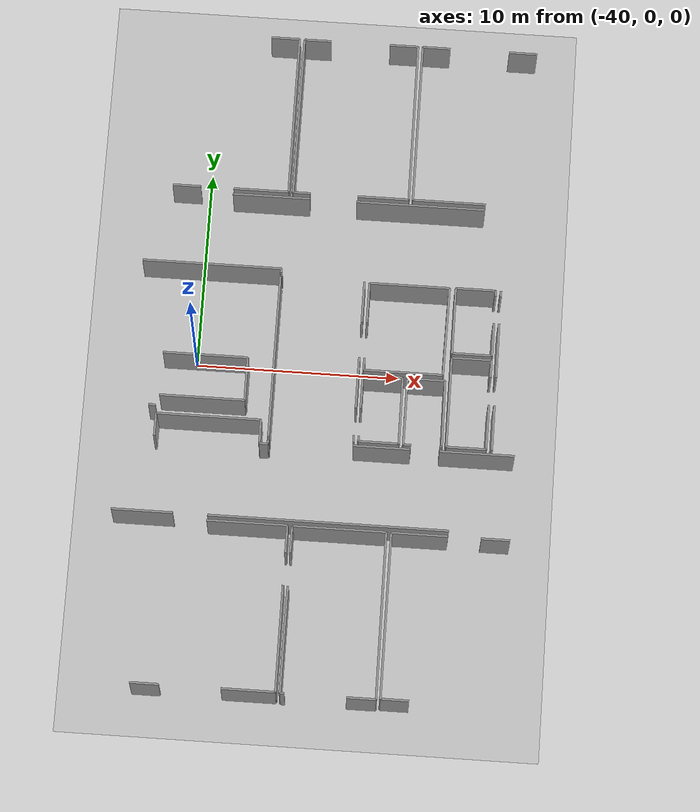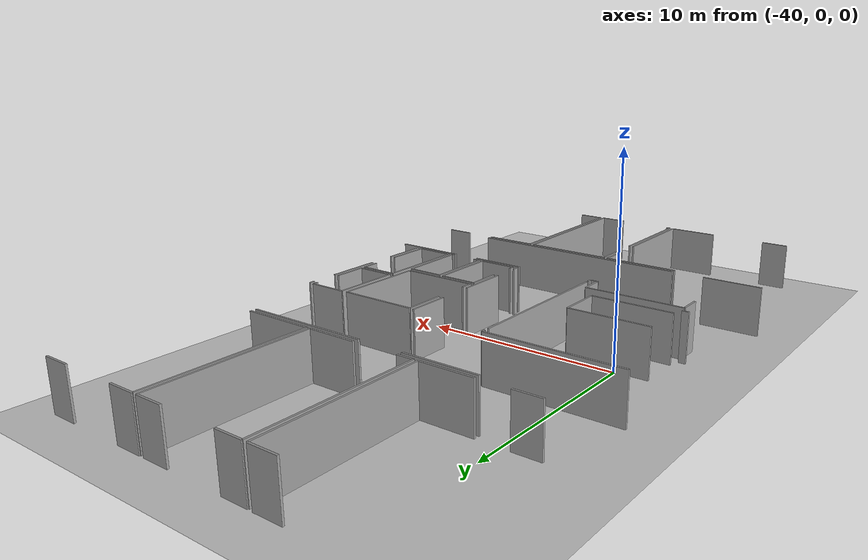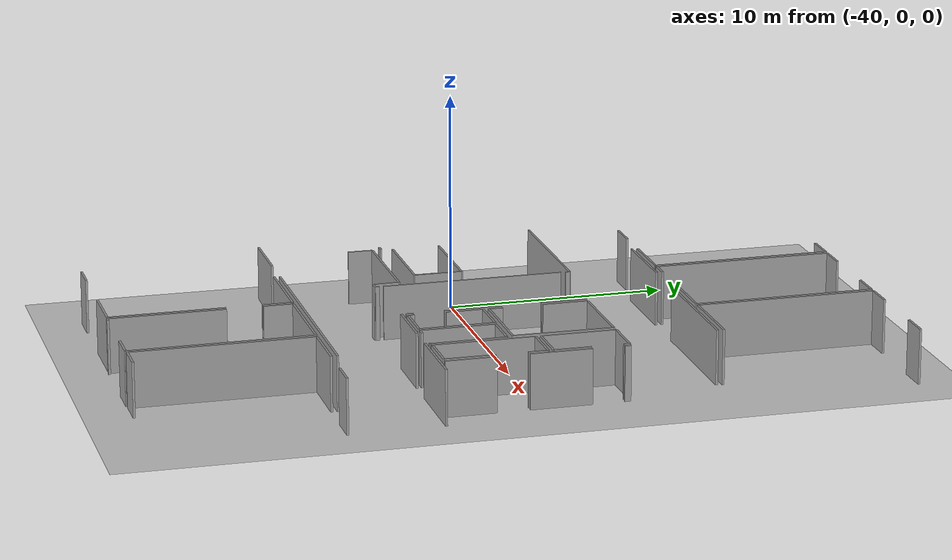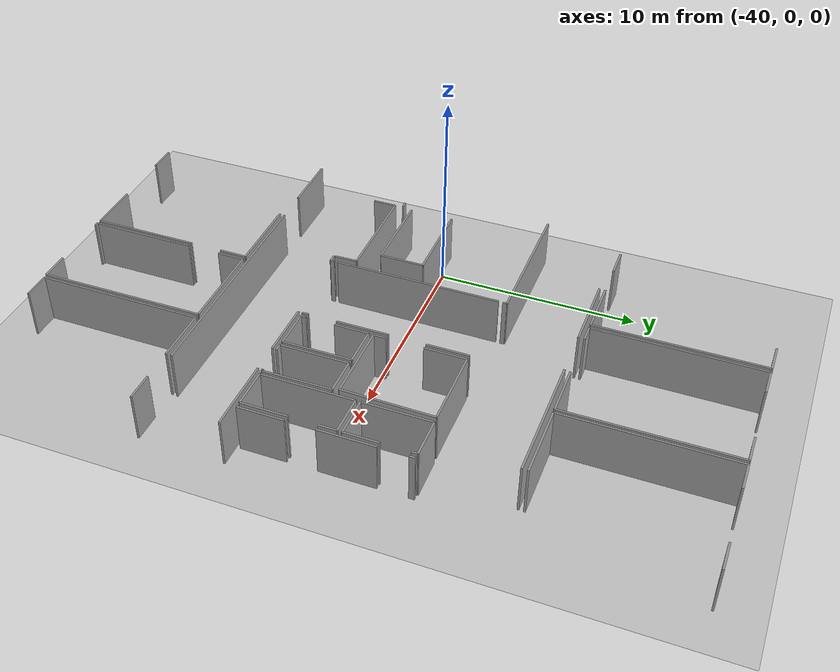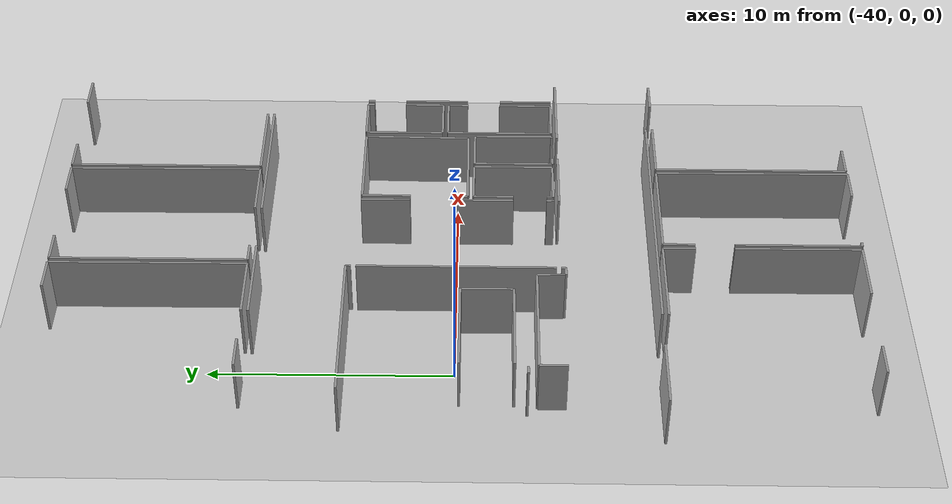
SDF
<sdf version="1.6">
 <world name="default">
  <model name="ground_plane">
   <static>1</static>
   <link name="link">
    <collision name="collision">
     <geometry><plane><normal>0 0 1</normal><size>100 100</size></plane></geometry>
     <surface><friction><ode><mu>100</mu><mu2>50</mu2></ode></friction></surface>
    </collision>
    <visual name="visual">
     <cast_shadows>0</cast_shadows>
     <geometry><plane><normal>0 0 1</normal><size>100 100</size></plane></geometry>
     <material>
      <script><uri>file://media/materials/scripts/gazebo.material</uri><name>Gazebo/Grey</name></script>
     </material>
    </visual>
   </link>
  </model>
  <model name="50041184">
   <static>1</static>
   <link name="Wall_3">
    <collision name="Wall_3_Collision">
     <geometry><box><size>0.209850134251 0.1 2.5</size></box></geometry>
     <pose>0.104925067125 0 1.25 0 0 0</pose>
    </collision>
    <visual name="Wall_3_Visual">
     <pose>0.104925067125 0 1.25 0 0 0</pose>
     <geometry><box><size>0.209850134251 0.1 2.5</size></box></geometry>
     <material>
      <script><uri>file://media/materials/scripts/gazebo.material</uri><name>Gazebo/Grey</name></script>
      <ambient>1 1 1 1</ambient>
     </material>
    </visual>
    <pose>35.4769996382 -12.4745939152 0 0 0 1.57079632679</pose>
   </link>
   <link name="Wall_4">
    <collision name="Wall_4_Collision">
     <geometry><box><size>6.88773081293 0.1 2.5</size></box></geometry>
     <pose>3.44386540647 0 1.25 0 0 0</pose>
    </collision>
    <visual name="Wall_4_Visual">
     <pose>3.44386540647 0 1.25 0 0 0</pose>
     <geometry><box><size>6.88773081293 0.1 2.5</size></box></geometry>
     <material>
      <script><uri>file://media/materials/scripts/gazebo.material</uri><name>Gazebo/Grey</name></script>
      <ambient>1 1 1 1</ambient>
     </material>
    </visual>
    <pose>35.4769996382 -12.264743781 0 0 0 3.14159265359</pose>
   </link>
   <link name="Wall_12">
    <collision name="Wall_12_Collision">
     <geometry><box><size>3.83062186986 0.1 2.5</size></box></geometry>
     <pose>1.91531093493 0 1.25 0 0 0</pose>
    </collision>
    <visual name="Wall_12_Visual">
     <pose>1.91531093493 0 1.25 0 0 0</pose>
     <geometry><box><size>3.83062186986 0.1 2.5</size></box></geometry>
     <material>
      <script><uri>file://media/materials/scripts/gazebo.material</uri><name>Gazebo/Grey</name></script>
      <ambient>1 1 1 1</ambient>
     </material>
    </visual>
    <pose>32.7894452873 -8.50813439041 0 0 0 0.0</pose>
   </link>
   <link name="Wall_13">
    <collision name="Wall_13_Collision">
     <geometry><box><size>6.39401806514 0.1 2.5</size></box></geometry>
     <pose>3.19700903257 0 1.25 0 0 0</pose>
    </collision>
    <visual name="Wall_13_Visual">
     <pose>3.19700903257 0 1.25 0 0 0</pose>
     <geometry><box><size>6.39401806514 0.1 2.5</size></box></geometry>
     <material>
      <script><uri>file://media/materials/scripts/gazebo.material</uri><name>Gazebo/Grey</name></script>
      <ambient>1 1 1 1</ambient>
     </material>
    </visual>
    <pose>38.9601564037 -8.50813439041 0 0 0 0.0</pose>
   </link>
   <link name="Wall_27">
    <collision name="Wall_27_Collision">
     <geometry><box><size>2.73896953809 0.1 2.5</size></box></geometry>
     <pose>1.36948476904 0 1.25 0 0 0</pose>
    </collision>
    <visual name="Wall_27_Visual">
     <pose>1.36948476904 0 1.25 0 0 0</pose>
     <geometry><box><size>2.73896953809 0.1 2.5</size></box></geometry>
     <material>
      <script><uri>file://media/materials/scripts/gazebo.material</uri><name>Gazebo/Grey</name></script>
      <ambient>1 1 1 1</ambient>
     </material>
    </visual>
    <pose>35.540602129 -8.22414482579 0 0 0 3.14159265359</pose>
   </link>
   <link name="Wall_28">
    <collision name="Wall_28_Collision">
     <geometry><box><size>1.40814137272 0.1 2.5</size></box></geometry>
     <pose>0.704070686361 0 1.25 0 0 0</pose>
    </collision>
    <visual name="Wall_28_Visual">
     <pose>0.704070686361 0 1.25 0 0 0</pose>
     <geometry><box><size>1.40814137272 0.1 2.5</size></box></geometry>
     <material>
      <script><uri>file://media/materials/scripts/gazebo.material</uri><name>Gazebo/Grey</name></script>
      <ambient>1 1 1 1</ambient>
     </material>
    </visual>
    <pose>31.1672643947 -8.22414482579 0 0 0 3.14159265359</pose>
   </link>
   <link name="Wall_31">
    <collision name="Wall_31_Collision">
     <geometry><box><size>1.43264293105 0.1 2.5</size></box></geometry>
     <pose>0.716321465523 0 1.25 0 0 0</pose>
    </collision>
    <visual name="Wall_31_Visual">
     <pose>0.716321465523 0 1.25 0 0 0</pose>
     <geometry><box><size>1.43264293105 0.1 2.5</size></box></geometry>
     <material>
      <script><uri>file://media/materials/scripts/gazebo.material</uri><name>Gazebo/Grey</name></script>
      <ambient>1 1 1 1</ambient>
     </material>
    </visual>
    <pose>34.0843462972 -0.016757542481 0 0 0 0.0</pose>
   </link>
   <link name="Wall_32">
    <collision name="Wall_32_Collision">
     <geometry><box><size>8.20742125075 0.1 2.5</size></box></geometry>
     <pose>4.10371062538 0 1.25 0 0 0</pose>
    </collision>
    <visual name="Wall_32_Visual">
     <pose>4.10371062538 0 1.25 0 0 0</pose>
     <geometry><box><size>8.20742125075 0.1 2.5</size></box></geometry>
     <material>
      <script><uri>file://media/materials/scripts/gazebo.material</uri><name>Gazebo/Grey</name></script>
      <ambient>1 1 1 1</ambient>
     </material>
    </visual>
    <pose>35.5169892282 -0.016757542481 0 0 0 -1.56791930457</pose>
   </link>
   <link name="Wall_33">
    <collision name="Wall_33_Collision">
     <geometry><box><size>2.53572085997 0.1 2.5</size></box></geometry>
     <pose>1.26786042998 0 1.25 0 0 0</pose>
    </collision>
    <visual name="Wall_33_Visual">
     <pose>1.26786042998 0 1.25 0 0 0</pose>
     <geometry><box><size>2.53572085997 0.1 2.5</size></box></geometry>
     <material>
      <script><uri>file://media/materials/scripts/gazebo.material</uri><name>Gazebo/Grey</name></script>
      <ambient>1 1 1 1</ambient>
     </material>
    </visual>
    <pose>41.5365016091 -8.22389092363 0 0 0 3.14159265359</pose>
   </link>
   <link name="Wall_34">
    <collision name="Wall_34_Collision">
     <geometry><box><size>0.863902095328 0.1 2.5</size></box></geometry>
     <pose>0.431951047664 0 1.25 0 0 0</pose>
    </collision>
    <visual name="Wall_34_Visual">
     <pose>0.431951047664 0 1.25 0 0 0</pose>
     <geometry><box><size>0.863902095328 0.1 2.5</size></box></geometry>
     <material>
      <script><uri>file://media/materials/scripts/gazebo.material</uri><name>Gazebo/Grey</name></script>
      <ambient>1 1 1 1</ambient>
     </material>
    </visual>
    <pose>36.6292076348 -8.22389092363 0 0 0 3.14159265359</pose>
   </link>
   <link name="Wall_35">
    <collision name="Wall_35_Collision">
     <geometry><box><size>8.19964326747 0.1 2.5</size></box></geometry>
     <pose>4.09982163373 0 1.25 0 0 0</pose>
    </collision>
    <visual name="Wall_35_Visual">
     <pose>4.09982163373 0 1.25 0 0 0</pose>
     <geometry><box><size>8.19964326747 0.1 2.5</size></box></geometry>
     <material>
      <script><uri>file://media/materials/scripts/gazebo.material</uri><name>Gazebo/Grey</name></script>
      <ambient>1 1 1 1</ambient>
     </material>
    </visual>
    <pose>35.7653055395 -8.22389092363 0 0 0 1.57079632679</pose>
   </link>
   <link name="Wall_36">
    <collision name="Wall_36_Collision">
     <geometry><box><size>1.35951910931 0.1 2.5</size></box></geometry>
     <pose>0.679759554656 0 1.25 0 0 0</pose>
    </collision>
    <visual name="Wall_36_Visual">
     <pose>0.679759554656 0 1.25 0 0 0</pose>
     <geometry><box><size>1.35951910931 0.1 2.5</size></box></geometry>
     <material>
      <script><uri>file://media/materials/scripts/gazebo.material</uri><name>Gazebo/Grey</name></script>
      <ambient>1 1 1 1</ambient>
     </material>
    </visual>
    <pose>35.7653055395 -0.0242476561657 0 0 0 0.0</pose>
   </link>
   <link name="Wall_37">
    <collision name="Wall_37_Collision">
     <geometry><box><size>1.42007477419 0.1 2.5</size></box></geometry>
     <pose>0.710037387093 0 1.25 0 0 0</pose>
    </collision>
    <visual name="Wall_37_Visual">
     <pose>0.710037387093 0 1.25 0 0 0</pose>
     <geometry><box><size>1.42007477419 0.1 2.5</size></box></geometry>
     <material>
      <script><uri>file://media/materials/scripts/gazebo.material</uri><name>Gazebo/Grey</name></script>
      <ambient>1 1 1 1</ambient>
     </material>
    </visual>
    <pose>40.0850699183 -0.0242476561657 0 0 0 0.0</pose>
   </link>
   <link name="Wall_38">
    <collision name="Wall_38_Collision">
     <geometry><box><size>8.1997032245 0.1 2.5</size></box></geometry>
     <pose>4.09985161225 0 1.25 0 0 0</pose>
    </collision>
    <visual name="Wall_38_Visual">
     <pose>4.09985161225 0 1.25 0 0 0</pose>
     <geometry><box><size>8.1997032245 0.1 2.5</size></box></geometry>
     <material>
      <script><uri>file://media/materials/scripts/gazebo.material</uri><name>Gazebo/Grey</name></script>
      <ambient>1 1 1 1</ambient>
     </material>
    </visual>
    <pose>41.5051446925 -0.0242476561657 0 0 0 -1.56697216485</pose>
   </link>
   <link name="Wall_40">
    <collision name="Wall_40_Collision">
     <geometry><box><size>3.63333989247 0.1 2.5</size></box></geometry>
     <pose>1.81666994624 0 1.25 0 0 0</pose>
    </collision>
    <visual name="Wall_40_Visual">
     <pose>1.81666994624 0 1.25 0 0 0</pose>
     <geometry><box><size>3.63333989247 0.1 2.5</size></box></geometry>
     <material>
      <script><uri>file://media/materials/scripts/gazebo.material</uri><name>Gazebo/Grey</name></script>
      <ambient>1 1 1 1</ambient>
     </material>
    </visual>
    <pose>45.3728362775 -8.2216058042 0 0 0 3.14159265359</pose>
   </link>
   <link name="Wall_41">
    <collision name="Wall_41_Collision">
     <geometry><box><size>8.20294399553 0.1 2.5</size></box></geometry>
     <pose>4.10147199777 0 1.25 0 0 0</pose>
    </collision>
    <visual name="Wall_41_Visual">
     <pose>4.10147199777 0 1.25 0 0 0</pose>
     <geometry><box><size>8.20294399553 0.1 2.5</size></box></geometry>
     <material>
      <script><uri>file://media/materials/scripts/gazebo.material</uri><name>Gazebo/Grey</name></script>
      <ambient>1 1 1 1</ambient>
     </material>
    </visual>
    <pose>41.7394963851 -8.2216058042 0 0 0 1.57079632679</pose>
   </link>
   <link name="Wall_42">
    <collision name="Wall_42_Collision">
     <geometry><box><size>1.39417675399 0.1 2.5</size></box></geometry>
     <pose>0.697088376994 0 1.25 0 0 0</pose>
    </collision>
    <visual name="Wall_42_Visual">
     <pose>0.697088376994 0 1.25 0 0 0</pose>
     <geometry><box><size>1.39417675399 0.1 2.5</size></box></geometry>
     <material>
      <script><uri>file://media/materials/scripts/gazebo.material</uri><name>Gazebo/Grey</name></script>
      <ambient>1 1 1 1</ambient>
     </material>
    </visual>
    <pose>41.7394963851 -0.018661808672 0 0 0 0.0</pose>
   </link>
   <link name="Wall_43">
    <collision name="Wall_43_Collision">
     <geometry><box><size>1.41055344323 0.1 2.5</size></box></geometry>
     <pose>0.705276721615 0 1.25 0 0 0</pose>
    </collision>
    <visual name="Wall_43_Visual">
     <pose>0.705276721615 0 1.25 0 0 0</pose>
     <geometry><box><size>1.41055344323 0.1 2.5</size></box></geometry>
     <material>
      <script><uri>file://media/materials/scripts/gazebo.material</uri><name>Gazebo/Grey</name></script>
      <ambient>1 1 1 1</ambient>
     </material>
    </visual>
    <pose>46.1028049841 -0.018661808672 0 0 0 0.0</pose>
   </link>
   <link name="Wall_241">
    <collision name="Wall_241_Collision">
     <geometry><box><size>2.27039310402 0.1 2.5</size></box></geometry>
     <pose>1.13519655201 0 1.25 0 0 0</pose>
    </collision>
    <visual name="Wall_241_Visual">
     <pose>1.13519655201 0 1.25 0 0 0</pose>
     <geometry><box><size>2.27039310402 0.1 2.5</size></box></geometry>
     <material>
      <script><uri>file://media/materials/scripts/gazebo.material</uri><name>Gazebo/Grey</name></script>
      <ambient>1 1 1 1</ambient>
     </material>
    </visual>
    <pose>46.3809547991 -20.8843412191 0 0 0 1.57079632679</pose>
   </link>
   <link name="Wall_242">
    <collision name="Wall_242_Collision">
     <geometry><box><size>2.75991646619 0.1 2.5</size></box></geometry>
     <pose>1.37995823309 0 1.25 0 0 0</pose>
    </collision>
    <visual name="Wall_242_Visual">
     <pose>1.37995823309 0 1.25 0 0 0</pose>
     <geometry><box><size>2.75991646619 0.1 2.5</size></box></geometry>
     <material>
      <script><uri>file://media/materials/scripts/gazebo.material</uri><name>Gazebo/Grey</name></script>
      <ambient>1 1 1 1</ambient>
     </material>
    </visual>
    <pose>46.3809547991 -17.1628972775 0 0 0 1.57079632679</pose>
   </link>
   <link name="Wall_243">
    <collision name="Wall_243_Collision">
     <geometry><box><size>0.277768961731 0.1 2.5</size></box></geometry>
     <pose>0.138884480865 0 1.25 0 0 0</pose>
    </collision>
    <visual name="Wall_243_Visual">
     <pose>0.138884480865 0 1.25 0 0 0</pose>
     <geometry><box><size>0.277768961731 0.1 2.5</size></box></geometry>
     <material>
      <script><uri>file://media/materials/scripts/gazebo.material</uri><name>Gazebo/Grey</name></script>
      <ambient>1 1 1 1</ambient>
     </material>
    </visual>
    <pose>46.3809547991 -12.9831599393 0 0 0 1.57079632679</pose>
   </link>
   <link name="Wall_247">
    <collision name="Wall_247_Collision">
     <geometry><box><size>1.96989989907 0.1 2.5</size></box></geometry>
     <pose>0.984949949537 0 1.25 0 0 0</pose>
    </collision>
    <visual name="Wall_247_Visual">
     <pose>0.984949949537 0 1.25 0 0 0</pose>
     <geometry><box><size>1.96989989907 0.1 2.5</size></box></geometry>
     <material>
      <script><uri>file://media/materials/scripts/gazebo.material</uri><name>Gazebo/Grey</name></script>
      <ambient>1 1 1 1</ambient>
     </material>
    </visual>
    <pose>46.1221015482 -16.0680711688 0 0 0 3.14159265359</pose>
   </link>
   <link name="Wall_248">
    <collision name="Wall_248_Collision">
     <geometry><box><size>3.37232847322 0.1 2.5</size></box></geometry>
     <pose>1.68616423661 0 1.25 0 0 0</pose>
    </collision>
    <visual name="Wall_248_Visual">
     <pose>1.68616423661 0 1.25 0 0 0</pose>
     <geometry><box><size>3.37232847322 0.1 2.5</size></box></geometry>
     <material>
      <script><uri>file://media/materials/scripts/gazebo.material</uri><name>Gazebo/Grey</name></script>
      <ambient>1 1 1 1</ambient>
     </material>
    </visual>
    <pose>44.1522016491 -16.0680711688 0 0 0 1.57079632679</pose>
   </link>
   <link name="Wall_249">
    <collision name="Wall_249_Collision">
     <geometry><box><size>1.96989989907 0.1 2.5</size></box></geometry>
     <pose>0.984949949537 0 1.25 0 0 0</pose>
    </collision>
    <visual name="Wall_249_Visual">
     <pose>0.984949949537 0 1.25 0 0 0</pose>
     <geometry><box><size>1.96989989907 0.1 2.5</size></box></geometry>
     <material>
      <script><uri>file://media/materials/scripts/gazebo.material</uri><name>Gazebo/Grey</name></script>
      <ambient>1 1 1 1</ambient>
     </material>
    </visual>
    <pose>44.1522016491 -12.6957426956 0 0 0 0.0</pose>
   </link>
   <link name="Wall_250">
    <collision name="Wall_250_Collision">
     <geometry><box><size>0.275483842301 0.1 2.5</size></box></geometry>
     <pose>0.137741921151 0 1.25 0 0 0</pose>
    </collision>
    <visual name="Wall_250_Visual">
     <pose>0.137741921151 0 1.25 0 0 0</pose>
     <geometry><box><size>0.275483842301 0.1 2.5</size></box></geometry>
     <material>
      <script><uri>file://media/materials/scripts/gazebo.material</uri><name>Gazebo/Grey</name></script>
      <ambient>1 1 1 1</ambient>
     </material>
    </visual>
    <pose>46.1221015482 -12.6957426956 0 0 0 -1.57079632679</pose>
   </link>
   <link name="Wall_251">
    <collision name="Wall_251_Collision">
     <geometry><box><size>1.68705289417 0.1 2.5</size></box></geometry>
     <pose>0.843526447084 0 1.25 0 0 0</pose>
    </collision>
    <visual name="Wall_251_Visual">
     <pose>0.843526447084 0 1.25 0 0 0</pose>
     <geometry><box><size>1.68705289417 0.1 2.5</size></box></geometry>
     <material>
      <script><uri>file://media/materials/scripts/gazebo.material</uri><name>Gazebo/Grey</name></script>
      <ambient>1 1 1 1</ambient>
     </material>
    </visual>
    <pose>46.1221015482 -14.3810182746 0 0 0 -1.57079632679</pose>
   </link>
   <link name="Wall_252">
    <collision name="Wall_252_Collision">
     <geometry><box><size>1.94285931916 0.1 2.5</size></box></geometry>
     <pose>0.971429659581 0 1.25 0 0 0</pose>
    </collision>
    <visual name="Wall_252_Visual">
     <pose>0.971429659581 0 1.25 0 0 0</pose>
     <geometry><box><size>1.94285931916 0.1 2.5</size></box></geometry>
     <material>
      <script><uri>file://media/materials/scripts/gazebo.material</uri><name>Gazebo/Grey</name></script>
      <ambient>1 1 1 1</ambient>
     </material>
    </visual>
    <pose>46.0973460877 -20.8637751442 0 0 0 3.14159265359</pose>
   </link>
   <link name="Wall_253">
    <collision name="Wall_253_Collision">
     <geometry><box><size>4.56274874477 0.1 2.5</size></box></geometry>
     <pose>2.28137437239 0 1.25 0 0 0</pose>
    </collision>
    <visual name="Wall_253_Visual">
     <pose>2.28137437239 0 1.25 0 0 0</pose>
     <geometry><box><size>4.56274874477 0.1 2.5</size></box></geometry>
     <material>
      <script><uri>file://media/materials/scripts/gazebo.material</uri><name>Gazebo/Grey</name></script>
      <ambient>1 1 1 1</ambient>
     </material>
    </visual>
    <pose>44.1544867685 -20.8637751442 0 0 0 1.57079632679</pose>
   </link>
   <link name="Wall_254">
    <collision name="Wall_254_Collision">
     <geometry><box><size>1.95631613358 0.1 2.5</size></box></geometry>
     <pose>0.978158066789 0 1.25 0 0 0</pose>
    </collision>
    <visual name="Wall_254_Visual">
     <pose>0.978158066789 0 1.25 0 0 0</pose>
     <geometry><box><size>1.95631613358 0.1 2.5</size></box></geometry>
     <material>
      <script><uri>file://media/materials/scripts/gazebo.material</uri><name>Gazebo/Grey</name></script>
      <ambient>1 1 1 1</ambient>
     </material>
    </visual>
    <pose>44.1544867685 -16.3010263995 0 0 0 0.0</pose>
   </link>
   <link name="Wall_255">
    <collision name="Wall_255_Collision">
     <geometry><box><size>0.875708545712 0.1 2.5</size></box></geometry>
     <pose>0.437854272856 0 1.25 0 0 0</pose>
    </collision>
    <visual name="Wall_255_Visual">
     <pose>0.437854272856 0 1.25 0 0 0</pose>
     <geometry><box><size>0.875708545712 0.1 2.5</size></box></geometry>
     <material>
      <script><uri>file://media/materials/scripts/gazebo.material</uri><name>Gazebo/Grey</name></script>
      <ambient>1 1 1 1</ambient>
     </material>
    </visual>
    <pose>46.1108029021 -16.3010263995 0 0 0 -1.57079632679</pose>
   </link>
   <link name="Wall_256">
    <collision name="Wall_256_Collision">
     <geometry><box><size>2.28223922759 0.1 2.5</size></box></geometry>
     <pose>1.1411196138 0 1.25 0 0 0</pose>
    </collision>
    <visual name="Wall_256_Visual">
     <pose>1.1411196138 0 1.25 0 0 0</pose>
     <geometry><box><size>2.28223922759 0.1 2.5</size></box></geometry>
     <material>
      <script><uri>file://media/materials/scripts/gazebo.material</uri><name>Gazebo/Grey</name></script>
      <ambient>1 1 1 1</ambient>
     </material>
    </visual>
    <pose>46.1108029021 -18.5815755898 0 0 0 -1.57669268167</pose>
   </link>
   <link name="Wall_257">
    <collision name="Wall_257_Collision">
     <geometry><box><size>0.105623298062 0.1 2.5</size></box></geometry>
     <pose>0.052811649031 0 1.25 0 0 0</pose>
    </collision>
    <visual name="Wall_257_Visual">
     <pose>0.052811649031 0 1.25 0 0 0</pose>
     <geometry><box><size>0.105623298062 0.1 2.5</size></box></geometry>
     <material>
      <script><uri>file://media/materials/scripts/gazebo.material</uri><name>Gazebo/Grey</name></script>
      <ambient>1 1 1 1</ambient>
     </material>
    </visual>
    <pose>43.9343535968 -20.8835795126 0 0 0 3.14159265359</pose>
   </link>
   <link name="Wall_258">
    <collision name="Wall_258_Collision">
     <geometry><box><size>0.376917754743 0.1 2.5</size></box></geometry>
     <pose>0.188458877372 0 1.25 0 0 0</pose>
    </collision>
    <visual name="Wall_258_Visual">
     <pose>0.188458877372 0 1.25 0 0 0</pose>
     <geometry><box><size>0.376917754743 0.1 2.5</size></box></geometry>
     <material>
      <script><uri>file://media/materials/scripts/gazebo.material</uri><name>Gazebo/Grey</name></script>
      <ambient>1 1 1 1</ambient>
     </material>
    </visual>
    <pose>42.4339187894 -20.8835795126 0 0 0 3.14159265359</pose>
   </link>
   <link name="Wall_259">
    <collision name="Wall_259_Collision">
     <geometry><box><size>3.37562920129 0.1 2.5</size></box></geometry>
     <pose>1.68781460064 0 1.25 0 0 0</pose>
    </collision>
    <visual name="Wall_259_Visual">
     <pose>1.68781460064 0 1.25 0 0 0</pose>
     <geometry><box><size>3.37562920129 0.1 2.5</size></box></geometry>
     <material>
      <script><uri>file://media/materials/scripts/gazebo.material</uri><name>Gazebo/Grey</name></script>
      <ambient>1 1 1 1</ambient>
     </material>
    </visual>
    <pose>42.0570010347 -20.8835795126 0 0 0 1.57079632679</pose>
   </link>
   <link name="Wall_260">
    <collision name="Wall_260_Collision">
     <geometry><box><size>1.84332967291 0.1 2.5</size></box></geometry>
     <pose>0.921664836455 0 1.25 0 0 0</pose>
    </collision>
    <visual name="Wall_260_Visual">
     <pose>0.921664836455 0 1.25 0 0 0</pose>
     <geometry><box><size>1.84332967291 0.1 2.5</size></box></geometry>
     <material>
      <script><uri>file://media/materials/scripts/gazebo.material</uri><name>Gazebo/Grey</name></script>
      <ambient>1 1 1 1</ambient>
     </material>
    </visual>
    <pose>42.0570010347 -17.5079503113 0 0 0 0.0</pose>
   </link>
   <link name="Wall_261">
    <collision name="Wall_261_Collision">
     <geometry><box><size>3.37580065489 0.1 2.5</size></box></geometry>
     <pose>1.68790032745 0 1.25 0 0 0</pose>
    </collision>
    <visual name="Wall_261_Visual">
     <pose>1.68790032745 0 1.25 0 0 0</pose>
     <geometry><box><size>3.37580065489 0.1 2.5</size></box></geometry>
     <material>
      <script><uri>file://media/materials/scripts/gazebo.material</uri><name>Gazebo/Grey</name></script>
      <ambient>1 1 1 1</ambient>
     </material>
    </visual>
    <pose>43.9003307076 -17.5079503113 0 0 0 -1.56071769101</pose>
   </link>
   <link name="Wall_262">
    <collision name="Wall_262_Collision">
     <geometry><box><size>3.89777899087 0.1 2.5</size></box></geometry>
     <pose>1.94888949543 0 1.25 0 0 0</pose>
    </collision>
    <visual name="Wall_262_Visual">
     <pose>1.94888949543 0 1.25 0 0 0</pose>
     <geometry><box><size>3.89777899087 0.1 2.5</size></box></geometry>
     <material>
      <script><uri>file://media/materials/scripts/gazebo.material</uri><name>Gazebo/Grey</name></script>
      <ambient>1 1 1 1</ambient>
     </material>
    </visual>
    <pose>43.7757916987 -17.2243416 0 0 0 3.14159265359</pose>
   </link>
   <link name="Wall_263">
    <collision name="Wall_263_Collision">
     <geometry><box><size>0.616982245892 0.1 2.5</size></box></geometry>
     <pose>0.308491122946 0 1.25 0 0 0</pose>
    </collision>
    <visual name="Wall_263_Visual">
     <pose>0.308491122946 0 1.25 0 0 0</pose>
     <geometry><box><size>0.616982245892 0.1 2.5</size></box></geometry>
     <material>
      <script><uri>file://media/materials/scripts/gazebo.material</uri><name>Gazebo/Grey</name></script>
      <ambient>1 1 1 1</ambient>
     </material>
    </visual>
    <pose>39.8780127078 -17.2243416 0 0 0 1.57079632679</pose>
   </link>
   <link name="Wall_264">
    <collision name="Wall_264_Collision">
     <geometry><box><size>2.06181248056 0.1 2.5</size></box></geometry>
     <pose>1.03090624028 0 1.25 0 0 0</pose>
    </collision>
    <visual name="Wall_264_Visual">
     <pose>1.03090624028 0 1.25 0 0 0</pose>
     <geometry><box><size>2.06181248056 0.1 2.5</size></box></geometry>
     <material>
      <script><uri>file://media/materials/scripts/gazebo.material</uri><name>Gazebo/Grey</name></script>
      <ambient>1 1 1 1</ambient>
     </material>
    </visual>
    <pose>39.8780127078 -14.7825645388 0 0 0 1.57079632679</pose>
   </link>
   <link name="Wall_265">
    <collision name="Wall_265_Collision">
     <geometry><box><size>3.96531696511 0.1 2.5</size></box></geometry>
     <pose>1.98265848255 0 1.25 0 0 0</pose>
    </collision>
    <visual name="Wall_265_Visual">
     <pose>1.98265848255 0 1.25 0 0 0</pose>
     <geometry><box><size>3.96531696511 0.1 2.5</size></box></geometry>
     <material>
      <script><uri>file://media/materials/scripts/gazebo.material</uri><name>Gazebo/Grey</name></script>
      <ambient>1 1 1 1</ambient>
     </material>
    </visual>
    <pose>39.8780127078 -12.7207520582 0 0 0 0.0</pose>
   </link>
   <link name="Wall_266">
    <collision name="Wall_266_Collision">
     <geometry><box><size>4.50409592912 0.1 2.5</size></box></geometry>
     <pose>2.25204796456 0 1.25 0 0 0</pose>
    </collision>
    <visual name="Wall_266_Visual">
     <pose>2.25204796456 0 1.25 0 0 0</pose>
     <geometry><box><size>4.50409592912 0.1 2.5</size></box></geometry>
     <material>
      <script><uri>file://media/materials/scripts/gazebo.material</uri><name>Gazebo/Grey</name></script>
      <ambient>1 1 1 1</ambient>
     </material>
    </visual>
    <pose>43.8433296729 -12.7207520582 0 0 0 -1.58579167913</pose>
   </link>
   <link name="Wall_267">
    <collision name="Wall_267_Collision">
     <geometry><box><size>1.97028075231 0.1 2.5</size></box></geometry>
     <pose>0.985140376156 0 1.25 0 0 0</pose>
    </collision>
    <visual name="Wall_267_Visual">
     <pose>0.985140376156 0 1.25 0 0 0</pose>
     <geometry><box><size>1.97028075231 0.1 2.5</size></box></geometry>
     <material>
      <script><uri>file://media/materials/scripts/gazebo.material</uri><name>Gazebo/Grey</name></script>
      <ambient>1 1 1 1</ambient>
     </material>
    </visual>
    <pose>41.8328054284 -20.8692340407 0 0 0 3.14159265359</pose>
   </link>
   <link name="Wall_268">
    <collision name="Wall_268_Collision">
     <geometry><box><size>0.274468233666 0.1 2.5</size></box></geometry>
     <pose>0.137234116833 0 1.25 0 0 0</pose>
    </collision>
    <visual name="Wall_268_Visual">
     <pose>0.137234116833 0 1.25 0 0 0</pose>
     <geometry><box><size>0.274468233666 0.1 2.5</size></box></geometry>
     <material>
      <script><uri>file://media/materials/scripts/gazebo.material</uri><name>Gazebo/Grey</name></script>
      <ambient>1 1 1 1</ambient>
     </material>
    </visual>
    <pose>39.8625246761 -20.8692340407 0 0 0 1.57079632679</pose>
   </link>
   <link name="Wall_269">
    <collision name="Wall_269_Collision">
     <geometry><box><size>1.69441605677 0.1 2.5</size></box></geometry>
     <pose>0.847208028386 0 1.25 0 0 0</pose>
    </collision>
    <visual name="Wall_269_Visual">
     <pose>0.847208028386 0 1.25 0 0 0</pose>
     <geometry><box><size>1.69441605677 0.1 2.5</size></box></geometry>
     <material>
      <script><uri>file://media/materials/scripts/gazebo.material</uri><name>Gazebo/Grey</name></script>
      <ambient>1 1 1 1</ambient>
     </material>
    </visual>
    <pose>39.8625246761 -19.1731676199 0 0 0 1.57079632679</pose>
   </link>
   <link name="Wall_270">
    <collision name="Wall_270_Collision">
     <geometry><box><size>1.96075942136 0.1 2.5</size></box></geometry>
     <pose>0.980379710678 0 1.25 0 0 0</pose>
    </collision>
    <visual name="Wall_270_Visual">
     <pose>0.980379710678 0 1.25 0 0 0</pose>
     <geometry><box><size>1.96075942136 0.1 2.5</size></box></geometry>
     <material>
      <script><uri>file://media/materials/scripts/gazebo.material</uri><name>Gazebo/Grey</name></script>
      <ambient>1 1 1 1</ambient>
     </material>
    </visual>
    <pose>39.8625246761 -17.4787515631 0 0 0 0.0</pose>
   </link>
   <link name="Wall_271">
    <collision name="Wall_271_Collision">
     <geometry><box><size>3.3904958467 0.1 2.5</size></box></geometry>
     <pose>1.69524792335 0 1.25 0 0 0</pose>
    </collision>
    <visual name="Wall_271_Visual">
     <pose>1.69524792335 0 1.25 0 0 0</pose>
     <geometry><box><size>3.3904958467 0.1 2.5</size></box></geometry>
     <material>
      <script><uri>file://media/materials/scripts/gazebo.material</uri><name>Gazebo/Grey</name></script>
      <ambient>1 1 1 1</ambient>
     </material>
    </visual>
    <pose>41.8232840975 -17.4787515631 0 0 0 -1.56798808166</pose>
   </link>
   <link name="Wall_272">
    <collision name="Wall_272_Collision">
     <geometry><box><size>8.24293358554 0.1 2.5</size></box></geometry>
     <pose>4.12146679277 0 1.25 0 0 0</pose>
    </collision>
    <visual name="Wall_272_Visual">
     <pose>4.12146679277 0 1.25 0 0 0</pose>
     <geometry><box><size>8.24293358554 0.1 2.5</size></box></geometry>
     <material>
      <script><uri>file://media/materials/scripts/gazebo.material</uri><name>Gazebo/Grey</name></script>
      <ambient>1 1 1 1</ambient>
     </material>
    </visual>
    <pose>35.4626541662 -20.9219187386 0 0 0 1.57079632679</pose>
   </link>
   <link name="Wall_273">
    <collision name="Wall_273_Collision">
     <geometry><box><size>2.09939000006 0.1 2.5</size></box></geometry>
     <pose>1.04969500003 0 1.25 0 0 0</pose>
    </collision>
    <visual name="Wall_273_Visual">
     <pose>1.04969500003 0 1.25 0 0 0</pose>
     <geometry><box><size>2.09939000006 0.1 2.5</size></box></geometry>
     <material>
      <script><uri>file://media/materials/scripts/gazebo.material</uri><name>Gazebo/Grey</name></script>
      <ambient>1 1 1 1</ambient>
     </material>
    </visual>
    <pose>39.6228410382 -12.6789851531 0 0 0 -1.57079632679</pose>
   </link>
   <link name="Wall_274">
    <collision name="Wall_274_Collision">
     <geometry><box><size>2.5915793349 0.1 2.5</size></box></geometry>
     <pose>1.29578966745 0 1.25 0 0 0</pose>
    </collision>
    <visual name="Wall_274_Visual">
     <pose>1.29578966745 0 1.25 0 0 0</pose>
     <geometry><box><size>2.5915793349 0.1 2.5</size></box></geometry>
     <material>
      <script><uri>file://media/materials/scripts/gazebo.material</uri><name>Gazebo/Grey</name></script>
      <ambient>1 1 1 1</ambient>
     </material>
    </visual>
    <pose>39.6228410382 -16.5926330289 0 0 0 -1.57079632679</pose>
   </link>
   <link name="Wall_275">
    <collision name="Wall_275_Collision">
     <geometry><box><size>0.340089597052 0.1 2.5</size></box></geometry>
     <pose>0.170044798526 0 1.25 0 0 0</pose>
    </collision>
    <visual name="Wall_275_Visual">
     <pose>0.170044798526 0 1.25 0 0 0</pose>
     <geometry><box><size>0.340089597052 0.1 2.5</size></box></geometry>
     <material>
      <script><uri>file://media/materials/scripts/gazebo.material</uri><name>Gazebo/Grey</name></script>
      <ambient>1 1 1 1</ambient>
     </material>
    </visual>
    <pose>39.6228410382 -20.5824515523 0 0 0 -1.51028688904</pose>
   </link>
   <link name="Wall_295">
    <collision name="Wall_295_Collision">
     <geometry><box><size>0.347084251084 0.1 2.5</size></box></geometry>
     <pose>0.173542125542 0 1.25 0 0 0</pose>
    </collision>
    <visual name="Wall_295_Visual">
     <pose>0.173542125542 0 1.25 0 0 0</pose>
     <geometry><box><size>0.347084251084 0.1 2.5</size></box></geometry>
     <material>
      <script><uri>file://media/materials/scripts/gazebo.material</uri><name>Gazebo/Grey</name></script>
      <ambient>1 1 1 1</ambient>
     </material>
    </visual>
    <pose>29.8411334192 -19.6925244857 0 0 0 3.14159265359</pose>
   </link>
   <link name="Wall_297">
    <collision name="Wall_297_Collision">
     <geometry><box><size>4.17910258282 0.1 2.5</size></box></geometry>
     <pose>2.08955129141 0 1.25 0 0 0</pose>
    </collision>
    <visual name="Wall_297_Visual">
     <pose>2.08955129141 0 1.25 0 0 0</pose>
     <geometry><box><size>4.17910258282 0.1 2.5</size></box></geometry>
     <material>
      <script><uri>file://media/materials/scripts/gazebo.material</uri><name>Gazebo/Grey</name></script>
      <ambient>1 1 1 1</ambient>
     </material>
    </visual>
    <pose>34.1718155909 -19.1652966529 0 0 0 3.14159265359</pose>
   </link>
   <link name="Wall_298">
    <collision name="Wall_298_Collision">
     <geometry><box><size>4.16945430079 0.1 2.5</size></box></geometry>
     <pose>2.08472715039 0 1.25 0 0 0</pose>
    </collision>
    <visual name="Wall_298_Visual">
     <pose>2.08472715039 0 1.25 0 0 0</pose>
     <geometry><box><size>4.16945430079 0.1 2.5</size></box></geometry>
     <material>
      <script><uri>file://media/materials/scripts/gazebo.material</uri><name>Gazebo/Grey</name></script>
      <ambient>1 1 1 1</ambient>
     </material>
    </visual>
    <pose>29.992713008 -16.9766600441 0 0 0 0.0</pose>
   </link>
   <link name="Wall_299">
    <collision name="Wall_299_Collision">
     <geometry><box><size>2.18865787529 0.1 2.5</size></box></geometry>
     <pose>1.09432893765 0 1.25 0 0 0</pose>
    </collision>
    <visual name="Wall_299_Visual">
     <pose>1.09432893765 0 1.25 0 0 0</pose>
     <geometry><box><size>2.18865787529 0.1 2.5</size></box></geometry>
     <material>
      <script><uri>file://media/materials/scripts/gazebo.material</uri><name>Gazebo/Grey</name></script>
      <ambient>1 1 1 1</ambient>
     </material>
    </visual>
    <pose>34.1621673088 -16.9766600441 0 0 0 -1.56638800268</pose>
   </link>
   <link name="Wall_300">
    <collision name="Wall_300_Collision">
     <geometry><box><size>1.14687605131 0.1 2.5</size></box></geometry>
     <pose>0.573438025657 0 1.25 0 0 0</pose>
    </collision>
    <visual name="Wall_300_Visual">
     <pose>0.573438025657 0 1.25 0 0 0</pose>
     <geometry><box><size>1.14687605131 0.1 2.5</size></box></geometry>
     <material>
      <script><uri>file://media/materials/scripts/gazebo.material</uri><name>Gazebo/Grey</name></script>
      <ambient>1 1 1 1</ambient>
     </material>
    </visual>
    <pose>29.9048628611 -21.2527532515 0 0 0 1.57079632679</pose>
   </link>
   <link name="Wall_301">
    <collision name="Wall_301_Collision">
     <geometry><box><size>5.13174348265 0.1 2.5</size></box></geometry>
     <pose>2.56587174132 0 1.25 0 0 0</pose>
    </collision>
    <visual name="Wall_301_Visual">
     <pose>2.56587174132 0 1.25 0 0 0</pose>
     <geometry><box><size>5.13174348265 0.1 2.5</size></box></geometry>
     <material>
      <script><uri>file://media/materials/scripts/gazebo.material</uri><name>Gazebo/Grey</name></script>
      <ambient>1 1 1 1</ambient>
     </material>
    </visual>
    <pose>29.9048628611 -20.1058772002 0 0 0 0.0</pose>
   </link>
   <link name="Wall_302">
    <collision name="Wall_302_Collision">
     <geometry><box><size>1.14708389836 0.1 2.5</size></box></geometry>
     <pose>0.57354194918 0 1.25 0 0 0</pose>
    </collision>
    <visual name="Wall_302_Visual">
     <pose>0.57354194918 0 1.25 0 0 0</pose>
     <geometry><box><size>1.14708389836 0.1 2.5</size></box></geometry>
     <material>
      <script><uri>file://media/materials/scripts/gazebo.material</uri><name>Gazebo/Grey</name></script>
      <ambient>1 1 1 1</ambient>
     </material>
    </visual>
    <pose>35.0366063437 -20.1058772002 0 0 0 -1.5517594415</pose>
   </link>
   <link name="Wall_311">
    <collision name="Wall_311_Collision">
     <geometry><box><size>11.719615846 0.1 2.5</size></box></geometry>
     <pose>5.85980792302 0 1.25 0 0 0</pose>
    </collision>
    <visual name="Wall_311_Visual">
     <pose>5.85980792302 0 1.25 0 0 0</pose>
     <geometry><box><size>11.719615846 0.1 2.5</size></box></geometry>
     <material>
      <script><uri>file://media/materials/scripts/gazebo.material</uri><name>Gazebo/Grey</name></script>
      <ambient>1 1 1 1</ambient>
     </material>
    </visual>
    <pose>44.527849893 -25.074742448 0 0 0 3.14159265359</pose>
   </link>
   <link name="Wall_312">
    <collision name="Wall_312_Collision">
     <geometry><box><size>2.99604547388 0.1 2.5</size></box></geometry>
     <pose>1.49802273694 0 1.25 0 0 0</pose>
    </collision>
    <visual name="Wall_312_Visual">
     <pose>1.49802273694 0 1.25 0 0 0</pose>
     <geometry><box><size>2.99604547388 0.1 2.5</size></box></geometry>
     <material>
      <script><uri>file://media/materials/scripts/gazebo.material</uri><name>Gazebo/Grey</name></script>
      <ambient>1 1 1 1</ambient>
     </material>
    </visual>
    <pose>31.1225776147 -25.074742448 0 0 0 3.14159265359</pose>
   </link>
   <link name="Wall_319">
    <collision name="Wall_319_Collision">
     <geometry><box><size>0.421096730375 0.1 2.5</size></box></geometry>
     <pose>0.210548365187 0 1.25 0 0 0</pose>
    </collision>
    <visual name="Wall_319_Visual">
     <pose>0.210548365187 0 1.25 0 0 0</pose>
     <geometry><box><size>0.421096730375 0.1 2.5</size></box></geometry>
     <material>
      <script><uri>file://media/materials/scripts/gazebo.material</uri><name>Gazebo/Grey</name></script>
      <ambient>1 1 1 1</ambient>
     </material>
    </visual>
    <pose>35.0438425553 -21.2976939336 0 0 0 0.0</pose>
   </link>
   <link name="Wall_320">
    <collision name="Wall_320_Collision">
     <geometry><box><size>0.190172716944 0.1 2.5</size></box></geometry>
     <pose>0.0950863584718 0 1.25 0 0 0</pose>
    </collision>
    <visual name="Wall_320_Visual">
     <pose>0.0950863584718 0 1.25 0 0 0</pose>
     <geometry><box><size>0.190172716944 0.1 2.5</size></box></geometry>
     <material>
      <script><uri>file://media/materials/scripts/gazebo.material</uri><name>Gazebo/Grey</name></script>
      <ambient>1 1 1 1</ambient>
     </material>
    </visual>
    <pose>35.4649392856 -21.2976939336 0 0 0 1.57079632679</pose>
   </link>
   <link name="Wall_321">
    <collision name="Wall_321_Collision">
     <geometry><box><size>2.79444715979 0.1 2.5</size></box></geometry>
     <pose>1.39722357989 0 1.25 0 0 0</pose>
    </collision>
    <visual name="Wall_321_Visual">
     <pose>1.39722357989 0 1.25 0 0 0</pose>
     <geometry><box><size>2.79444715979 0.1 2.5</size></box></geometry>
     <material>
      <script><uri>file://media/materials/scripts/gazebo.material</uri><name>Gazebo/Grey</name></script>
      <ambient>1 1 1 1</ambient>
     </material>
    </visual>
    <pose>39.6167473864 -21.1075212167 0 0 0 0.0</pose>
   </link>
   <link name="Wall_322">
    <collision name="Wall_322_Collision">
     <geometry><box><size>3.6707923071 0.1 2.5</size></box></geometry>
     <pose>1.83539615355 0 1.25 0 0 0</pose>
    </collision>
    <visual name="Wall_322_Visual">
     <pose>1.83539615355 0 1.25 0 0 0</pose>
     <geometry><box><size>3.6707923071 0.1 2.5</size></box></geometry>
     <material>
      <script><uri>file://media/materials/scripts/gazebo.material</uri><name>Gazebo/Grey</name></script>
      <ambient>1 1 1 1</ambient>
     </material>
    </visual>
    <pose>43.833935293 -21.1075212167 0 0 0 0.00100293931442</pose>
   </link>
   <link name="Wall_345">
    <collision name="Wall_345_Collision">
     <geometry><box><size>2.61633479539 0.1 2.5</size></box></geometry>
     <pose>1.30816739769 0 1.25 0 0 0</pose>
    </collision>
    <visual name="Wall_345_Visual">
     <pose>1.30816739769 0 1.25 0 0 0</pose>
     <geometry><box><size>2.61633479539 0.1 2.5</size></box></geometry>
     <material>
      <script><uri>file://media/materials/scripts/gazebo.material</uri><name>Gazebo/Grey</name></script>
      <ambient>1 1 1 1</ambient>
     </material>
    </visual>
    <pose>36.7305145962 -33.5781796485 0 0 0 3.14159265359</pose>
   </link>
   <link name="Wall_346">
    <collision name="Wall_346_Collision">
     <geometry><box><size>1.40204772091 0.1 2.5</size></box></geometry>
     <pose>0.701023860455 0 1.25 0 0 0</pose>
    </collision>
    <visual name="Wall_346_Visual">
     <pose>0.701023860455 0 1.25 0 0 0</pose>
     <geometry><box><size>1.40204772091 0.1 2.5</size></box></geometry>
     <material>
      <script><uri>file://media/materials/scripts/gazebo.material</uri><name>Gazebo/Grey</name></script>
      <ambient>1 1 1 1</ambient>
     </material>
    </visual>
    <pose>31.1336223586 -33.5781796485 0 0 0 3.14159265359</pose>
   </link>
   <link name="Wall_349">
    <collision name="Wall_349_Collision">
     <geometry><box><size>3.92418481538 0.1 2.5</size></box></geometry>
     <pose>1.96209240769 0 1.25 0 0 0</pose>
    </collision>
    <visual name="Wall_349_Visual">
     <pose>1.96209240769 0 1.25 0 0 0</pose>
     <geometry><box><size>3.92418481538 0.1 2.5</size></box></geometry>
     <material>
      <script><uri>file://media/materials/scripts/gazebo.material</uri><name>Gazebo/Grey</name></script>
      <ambient>1 1 1 1</ambient>
     </material>
    </visual>
    <pose>32.7933807707 -25.3319453349 0 0 0 0.0</pose>
   </link>
   <link name="Wall_350">
    <collision name="Wall_350_Collision">
     <geometry><box><size>1.37145251077 0.1 2.5</size></box></geometry>
     <pose>0.685726255387 0 1.25 0 0 0</pose>
    </collision>
    <visual name="Wall_350_Visual">
     <pose>0.685726255387 0 1.25 0 0 0</pose>
     <geometry><box><size>1.37145251077 0.1 2.5</size></box></geometry>
     <material>
      <script><uri>file://media/materials/scripts/gazebo.material</uri><name>Gazebo/Grey</name></script>
      <ambient>1 1 1 1</ambient>
     </material>
    </visual>
    <pose>36.7175655861 -25.3319453349 0 0 0 -1.57079632679</pose>
   </link>
   <link name="Wall_351">
    <collision name="Wall_351_Collision">
     <geometry><box><size>5.26569279308 0.1 2.5</size></box></geometry>
     <pose>2.63284639654 0 1.25 0 0 0</pose>
    </collision>
    <visual name="Wall_351_Visual">
     <pose>2.63284639654 0 1.25 0 0 0</pose>
     <geometry><box><size>5.26569279308 0.1 2.5</size></box></geometry>
     <material>
      <script><uri>file://media/materials/scripts/gazebo.material</uri><name>Gazebo/Grey</name></script>
      <ambient>1 1 1 1</ambient>
     </material>
    </visual>
    <pose>36.7175655861 -28.3125027771 0 0 0 -1.56833719679</pose>
   </link>
   <link name="Wall_352">
    <collision name="Wall_352_Collision">
     <geometry><box><size>1.41677404612 0.1 2.5</size></box></geometry>
     <pose>0.708387023061 0 1.25 0 0 0</pose>
    </collision>
    <visual name="Wall_352_Visual">
     <pose>0.708387023061 0 1.25 0 0 0</pose>
     <geometry><box><size>1.41677404612 0.1 2.5</size></box></geometry>
     <material>
      <script><uri>file://media/materials/scripts/gazebo.material</uri><name>Gazebo/Grey</name></script>
      <ambient>1 1 1 1</ambient>
     </material>
    </visual>
    <pose>41.5497045214 -33.60775925 0 0 0 3.14159265359</pose>
   </link>
   <link name="Wall_353">
    <collision name="Wall_353_Collision">
     <geometry><box><size>0.214674275268 0.1 2.5</size></box></geometry>
     <pose>0.107337137634 0 1.25 0 0 0</pose>
    </collision>
    <visual name="Wall_353_Visual">
     <pose>0.107337137634 0 1.25 0 0 0</pose>
     <geometry><box><size>0.214674275268 0.1 2.5</size></box></geometry>
     <material>
      <script><uri>file://media/materials/scripts/gazebo.material</uri><name>Gazebo/Grey</name></script>
      <ambient>1 1 1 1</ambient>
     </material>
    </visual>
    <pose>37.1627830216 -33.60775925 0 0 0 3.14159265359</pose>
   </link>
   <link name="Wall_354">
    <collision name="Wall_354_Collision">
     <geometry><box><size>5.27761027288 0.1 2.5</size></box></geometry>
     <pose>2.63880513644 0 1.25 0 0 0</pose>
    </collision>
    <visual name="Wall_354_Visual">
     <pose>2.63880513644 0 1.25 0 0 0</pose>
     <geometry><box><size>5.27761027288 0.1 2.5</size></box></geometry>
     <material>
      <script><uri>file://media/materials/scripts/gazebo.material</uri><name>Gazebo/Grey</name></script>
      <ambient>1 1 1 1</ambient>
     </material>
    </visual>
    <pose>36.9481087463 -33.60775925 0 0 0 1.57079632679</pose>
   </link>
   <link name="Wall_355">
    <collision name="Wall_355_Collision">
     <geometry><box><size>1.34999777836 0.1 2.5</size></box></geometry>
     <pose>0.674998889178 0 1.25 0 0 0</pose>
    </collision>
    <visual name="Wall_355_Visual">
     <pose>0.674998889178 0 1.25 0 0 0</pose>
     <geometry><box><size>1.34999777836 0.1 2.5</size></box></geometry>
     <material>
      <script><uri>file://media/materials/scripts/gazebo.material</uri><name>Gazebo/Grey</name></script>
      <ambient>1 1 1 1</ambient>
     </material>
    </visual>
    <pose>36.9481087463 -26.6965424874 0 0 0 1.57079632679</pose>
   </link>
   <link name="Wall_356">
    <collision name="Wall_356_Collision">
     <geometry><box><size>4.56630337499 0.1 2.5</size></box></geometry>
     <pose>2.2831516875 0 1.25 0 0 0</pose>
    </collision>
    <visual name="Wall_356_Visual">
     <pose>2.2831516875 0 1.25 0 0 0</pose>
     <geometry><box><size>4.56630337499 0.1 2.5</size></box></geometry>
     <material>
      <script><uri>file://media/materials/scripts/gazebo.material</uri><name>Gazebo/Grey</name></script>
      <ambient>1 1 1 1</ambient>
     </material>
    </visual>
    <pose>36.9481087463 -25.346544709 0 0 0 0.0</pose>
   </link>
   <link name="Wall_357">
    <collision name="Wall_357_Collision">
     <geometry><box><size>8.26128992625 0.1 2.5</size></box></geometry>
     <pose>4.13064496312 0 1.25 0 0 0</pose>
    </collision>
    <visual name="Wall_357_Visual">
     <pose>4.13064496312 0 1.25 0 0 0</pose>
     <geometry><box><size>8.26128992625 0.1 2.5</size></box></geometry>
     <material>
      <script><uri>file://media/materials/scripts/gazebo.material</uri><name>Gazebo/Grey</name></script>
      <ambient>1 1 1 1</ambient>
     </material>
    </visual>
    <pose>41.5144121213 -25.346544709 0 0 0 -1.56652429328</pose>
   </link>
   <link name="Wall_359">
    <collision name="Wall_359_Collision">
     <geometry><box><size>1.37208726617 0.1 2.5</size></box></geometry>
     <pose>0.686043633086 0 1.25 0 0 0</pose>
    </collision>
    <visual name="Wall_359_Visual">
     <pose>0.686043633086 0 1.25 0 0 0</pose>
     <geometry><box><size>1.37208726617 0.1 2.5</size></box></geometry>
     <material>
      <script><uri>file://media/materials/scripts/gazebo.material</uri><name>Gazebo/Grey</name></script>
      <ambient>1 1 1 1</ambient>
     </material>
    </visual>
    <pose>43.1280872916 -33.5642150297 0 0 0 3.14159265359</pose>
   </link>
   <link name="Wall_360">
    <collision name="Wall_360_Collision">
     <geometry><box><size>8.21094191353 0.1 2.5</size></box></geometry>
     <pose>4.10547095677 0 1.25 0 0 0</pose>
    </collision>
    <visual name="Wall_360_Visual">
     <pose>4.10547095677 0 1.25 0 0 0</pose>
     <geometry><box><size>8.21094191353 0.1 2.5</size></box></geometry>
     <material>
      <script><uri>file://media/materials/scripts/gazebo.material</uri><name>Gazebo/Grey</name></script>
      <ambient>1 1 1 1</ambient>
     </material>
    </visual>
    <pose>41.7560000254 -33.5642150297 0 0 0 1.57079632679</pose>
   </link>
   <link name="Wall_361">
    <collision name="Wall_361_Collision">
     <geometry><box><size>2.74417453234 0.1 2.5</size></box></geometry>
     <pose>1.37208726617 0 1.25 0 0 0</pose>
    </collision>
    <visual name="Wall_361_Visual">
     <pose>1.37208726617 0 1.25 0 0 0</pose>
     <geometry><box><size>2.74417453234 0.1 2.5</size></box></geometry>
     <material>
      <script><uri>file://media/materials/scripts/gazebo.material</uri><name>Gazebo/Grey</name></script>
      <ambient>1 1 1 1</ambient>
     </material>
    </visual>
    <pose>41.7560000254 -25.3532731162 0 0 0 0.0</pose>
   </link>
   <link name="Wall_362">
    <collision name="Wall_362_Collision">
     <geometry><box><size>1.40242857415 0.1 2.5</size></box></geometry>
     <pose>0.701214287074 0 1.25 0 0 0</pose>
    </collision>
    <visual name="Wall_362_Visual">
     <pose>0.701214287074 0 1.25 0 0 0</pose>
     <geometry><box><size>1.40242857415 0.1 2.5</size></box></geometry>
     <material>
      <script><uri>file://media/materials/scripts/gazebo.material</uri><name>Gazebo/Grey</name></script>
      <ambient>1 1 1 1</ambient>
     </material>
    </visual>
    <pose>46.1137227769 -25.3532731162 0 0 0 0.0</pose>
   </link>
   <pose>-71.6 16.80775925 0 0 0 0</pose>
  </model>
 </world>
</sdf>
